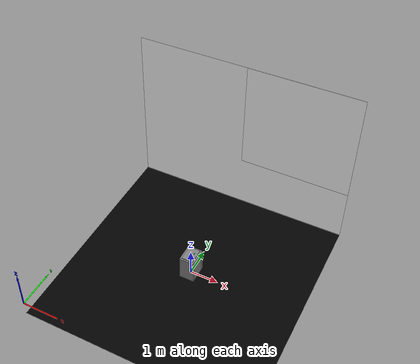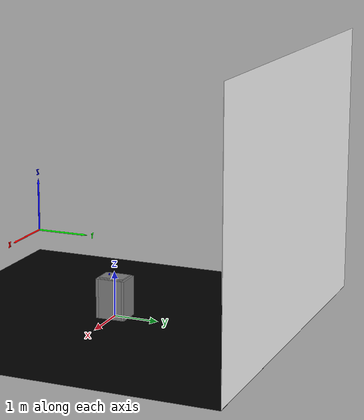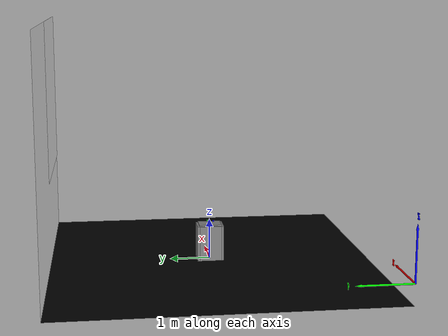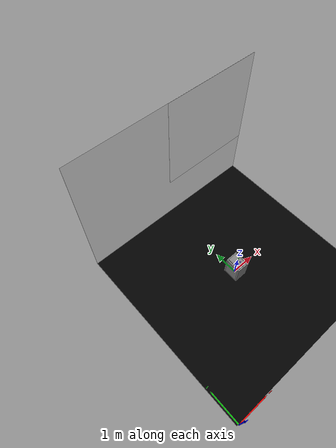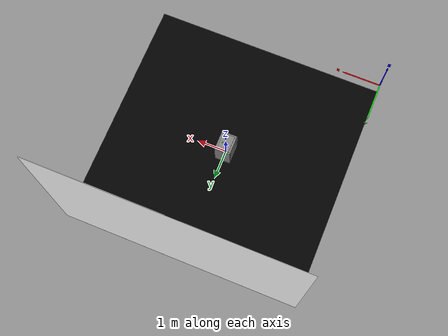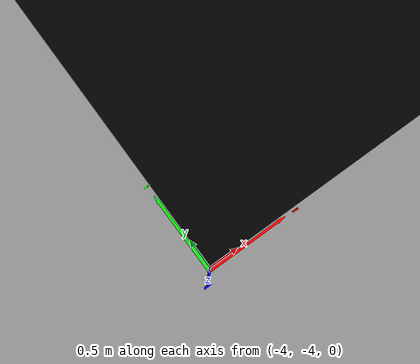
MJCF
<mujoco>
    <option timestep="0.01" gravity="0 0 -9.81" tolerance="1e-10" impratio="10">
		<flag sensornoise="enable" energy="enable"/>
	</option>
    <default>
        <geom contype='1' conaffinity='1' condim='6'  margin="1e-3" solref=".01 1" solimp=".99 .99 .01" />
    </default>

    <include file="mlpro.xml"></include>
    <worldbody>
        <camera name="top_camera" mode="fixed" pos="0 0 1.5" euler="0 0 90"/>

        <body name="pick_box" pos="0 0 0" euler="0 0 0">
            <geom size=".2 .28 .03" pos ="0 0 0.88" type="box"/>
            <geom size=".03 .27 .44" pos ="0.23 0.0 0.44" type="box"/>
            <geom size=".03 .27 .44" pos ="-0.23 0.0 0.44" type="box"/>
            <geom size=".26 .03 .44" pos ="0.0 0.3 0.44" type="box"/>
            <geom size=".26 .03 .44" pos ="0.0 -0.3 0.44" type="box"/>
            <inertial pos="0 0 0" mass="1000" diaginertia="0 0 0" />
        </body>

        <body name="box_1" pos=".0 0 0.95">
            <joint type="free" damping="0.0" name="box_1" />
            <geom name="body_1" pos="0 0 0" rgba="1 0 0 1" size="0.015 0.015 0.015" type="box" />
        </body>
        <body name="box_2" pos=".1 0.05 0.95">
            <joint type="free" damping="0.0" name="box_2" />
            <geom name="body_2" pos="0 0 0" rgba="0 1 0 1" size="0.015 0.015 0.015" type="box" />
        </body>
        <body name="box_3" pos=".05 -0.1 0.95">
            <joint type="free" damping="0.0" name="box_3" />
            <geom name="body_3" pos="0 0 0" rgba="0 0 1 1" size="0.015 0.015 0.015" type="box" />
        </body>
    </worldbody>
    <visual>
        <map fogstart="3" fogend="5" znear="0.05"/>
    </visual>
</mujoco>

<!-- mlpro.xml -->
<mujoco>
    <compiler meshdir="assets/mlpro/mesh/" texturedir="assets/mlpro/texture/"/>
    <asset>
        <mesh name="arrow" file="Arrow.stl"/>
        <mesh name="x_letter" file="X_letter.stl"/>
        <mesh name="y_letter" file="Y_letter.stl"/>
        <mesh name="z_letter" file="Z_letter.stl"/>
        <texture name="mlpro_logo" type="2d" file="logo.png"/>
        <texture name="texplane" type="2d" builtin="checker" rgb1="0 0 0" rgb2="0 0 0" width="40" height="40" mark="cross" markrgb="0.5 0.5 0.5"/>

        <material name="mlpro_mat" texture="mlpro_logo" rgba="1 1 1 1"/>

        <material name="grid" texture="texplane" texrepeat="2 2" texuniform="true" reflectance="0"/>
    </asset>
    <worldbody>
    <!-- Light -->
    <light diffuse="1 1 1" directional="true" castshadow="false" pos="0 0 0" dir="0 0 -1"/>
    <light diffuse="0.1 0.1 0.1" directional="true" castshadow="false" pos="0 0 0" dir="0 1 0"/>

    <!-- Floor -->
	<geom type="plane" material="grid" size="4 4 0.1"/>

    <!-- Back with MLPro Logo -->
    <geom type="plane" size="4 3 0.1" pos="0 4 3" quat="0.7071068 0.7071068 0 0" rgba="1 1 1 1"/>
    <geom type="plane" material="mlpro_mat" size="2 2 0.1" pos="2 3.99 4" quat="0.7071068 0.7071068 0 0" rgba="1 1 1 1"/>

    <!-- Axis Arrow -->
    <geom type="mesh" mesh="arrow" pos="-4 -4 0.5" quat="1 0 0 0" rgba="0 0 1 1"/>
    <geom type="mesh" mesh="arrow" pos="-4 -4 0.5" quat="0.7071068 -0.7071068 0 0" rgba="0 1 0 1"/>
    <geom type="mesh" mesh="arrow" pos="-4 -4 0.5" quat="0.7071068 0 0.7071068 0" rgba="1 0 0 1"/>

    <!-- Axis Text -->
    <geom type="mesh" mesh="x_letter" pos="-2.5 -4 0.5" quat="0.7071068 0.7071068 0 0" rgba="1 0 0 1"/>
    <geom type="mesh" mesh="y_letter" pos="-4 -2.5 0.5" quat="0.7071068 0.7071068 0 0" rgba="0 1 0 1"/>
    <geom type="mesh" mesh="z_letter" pos="-4 -4 2" quat="0.7071068 0.7071068 0 0" rgba="0 0 1 1"/>
    </worldbody>
</mujoco>
